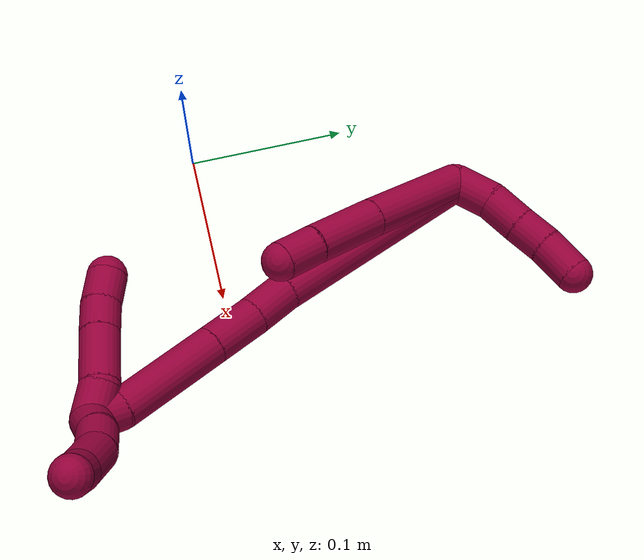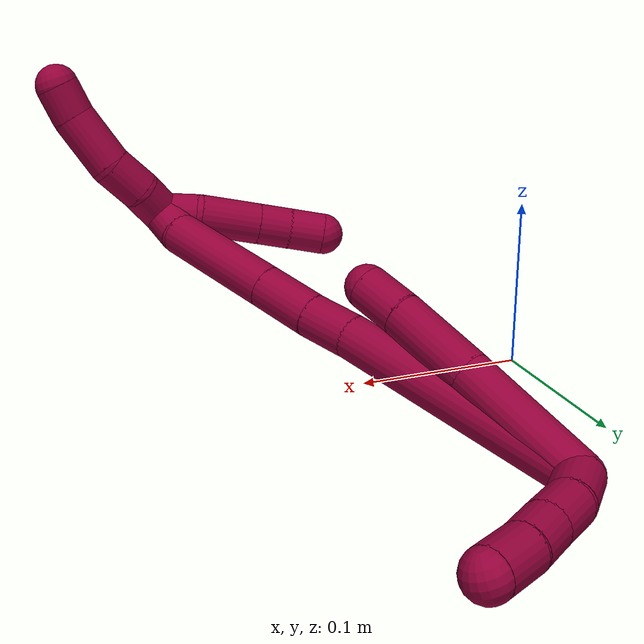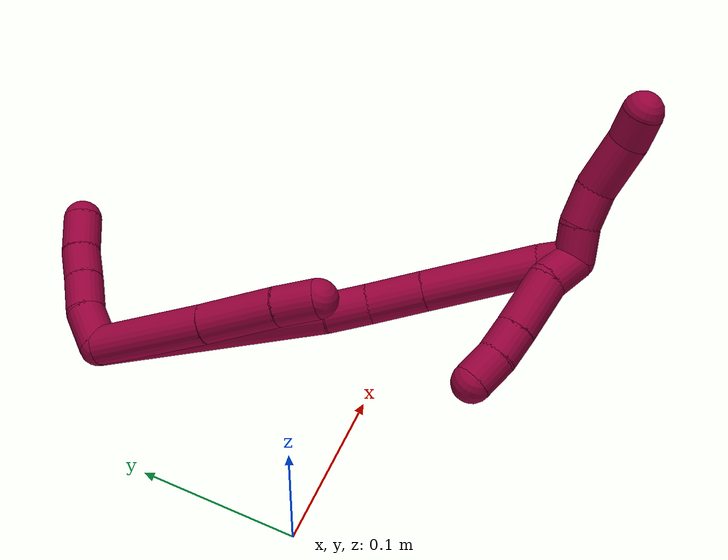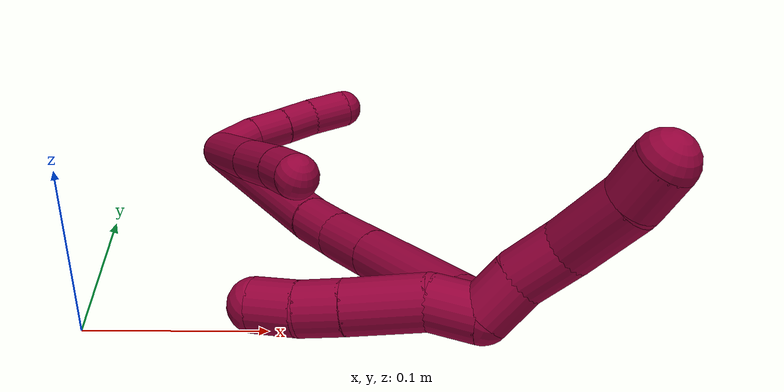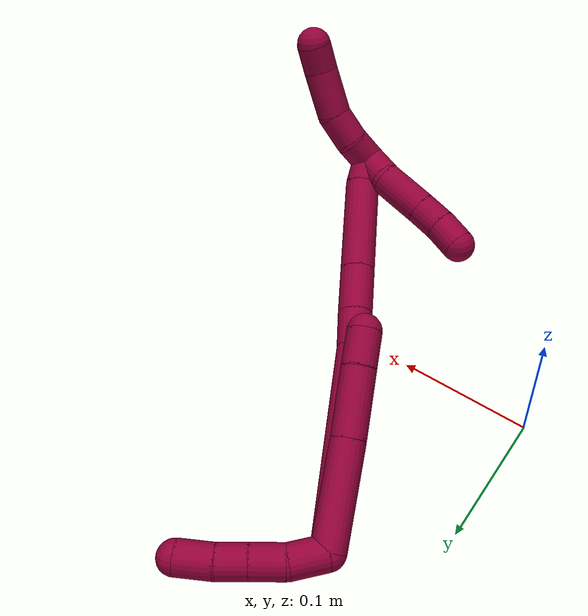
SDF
<sdf version="1.7">
 <world name="default">
  <model name="8">
   <static>0</static>
   <link name="8">
    <collision name="collision-cylinder-e_1_2_8">
     <pose>0.013992 -0.024576 -0.024188 2.34825 0.385478 0.872024</pose>
     <geometry><cylinder><radius>0.0125</radius><length>0.074427</length></cylinder></geometry>
     <surface>
      <friction><ode><mu>1.16</mu><mu2>1.16</mu2><slip1>0</slip1><slip2>0</slip2></ode></friction>
      <contact><ode><kp>1e+06</kp><kd>1</kd><max_vel>0</max_vel><min_depth>0.001</min_depth></ode></contact>
     </surface>
    </collision>
    <visual name="visual-cylinder-e_1_2_8">
     <pose>0.013992 -0.024576 -0.024188 2.34825 0.385478 0.872024</pose>
     <geometry><cylinder><radius>0.0125</radius><length>0.074427</length></cylinder></geometry>
     <material><ambient>0.584314 0 0.227451 1</ambient></material>
    </visual>
    <collision name="collision-cylinder-e_2_8_9">
     <pose>0.036525 -0.06562 -0.06439 2.3422 0.35598 0.805177</pose>
     <geometry><cylinder><radius>0.0125</radius><length>0.049013</length></cylinder></geometry>
     <surface>
      <friction><ode><mu>1.16</mu><mu2>1.16</mu2><slip1>0</slip1><slip2>0</slip2></ode></friction>
      <contact><ode><kp>1e+06</kp><kd>1</kd><max_vel>0</max_vel><min_depth>0.001</min_depth></ode></contact>
     </surface>
    </collision>
    <visual name="visual-cylinder-e_2_8_9">
     <pose>0.036525 -0.06562 -0.06439 2.3422 0.35598 0.805177</pose>
     <geometry><cylinder><radius>0.0125</radius><length>0.049013</length></cylinder></geometry>
     <material><ambient>0.584314 0 0.227451 1</ambient></material>
    </visual>
    <collision name="collision-cylinder-e_3_9_6">
     <pose>0.049809 -0.09154 -0.088437 2.27525 0.36521 0.759805</pose>
     <geometry><cylinder><radius>0.0125</radius><length>0.02656</length></cylinder></geometry>
     <surface>
      <friction><ode><mu>1.16</mu><mu2>1.16</mu2><slip1>0</slip1><slip2>0</slip2></ode></friction>
      <contact><ode><kp>1e+06</kp><kd>1</kd><max_vel>0</max_vel><min_depth>0.001</min_depth></ode></contact>
     </surface>
    </collision>
    <visual name="visual-cylinder-e_3_9_6">
     <pose>0.049809 -0.09154 -0.088437 2.27525 0.36521 0.759805</pose>
     <geometry><cylinder><radius>0.0125</radius><length>0.02656</length></cylinder></geometry>
     <material><ambient>0.584314 0 0.227451 1</ambient></material>
    </visual>
    <collision name="collision-cylinder-e_1_2_10">
     <pose>-0.013491 0.000589 -0.000497 -2.27098 -1.51374 2.22653</pose>
     <geometry><cylinder><radius>0.0125</radius><length>0.027027</length></cylinder></geometry>
     <surface>
      <friction><ode><mu>1.16</mu><mu2>1.16</mu2><slip1>0</slip1><slip2>0</slip2></ode></friction>
      <contact><ode><kp>1e+06</kp><kd>1</kd><max_vel>0</max_vel><min_depth>0.001</min_depth></ode></contact>
     </surface>
    </collision>
    <visual name="visual-cylinder-e_1_2_10">
     <pose>-0.013491 0.000589 -0.000497 -2.27098 -1.51374 2.22653</pose>
     <geometry><cylinder><radius>0.0125</radius><length>0.027027</length></cylinder></geometry>
     <material><ambient>0.584314 0 0.227451 1</ambient></material>
    </visual>
    <collision name="collision-cylinder-e_2_10_11">
     <pose>-0.039067 -0.001278 -0.002413 2.09493 -1.34016 -1.88281</pose>
     <geometry><cylinder><radius>0.0125</radius><length>0.024826</length></cylinder></geometry>
     <surface>
      <friction><ode><mu>1.16</mu><mu2>1.16</mu2><slip1>0</slip1><slip2>0</slip2></ode></friction>
      <contact><ode><kp>1e+06</kp><kd>1</kd><max_vel>0</max_vel><min_depth>0.001</min_depth></ode></contact>
     </surface>
    </collision>
    <visual name="visual-cylinder-e_2_10_11">
     <pose>-0.039067 -0.001278 -0.002413 2.09493 -1.34016 -1.88281</pose>
     <geometry><cylinder><radius>0.0125</radius><length>0.024826</length></cylinder></geometry>
     <material><ambient>0.584314 0 0.227451 1</ambient></material>
    </visual>
    <collision name="collision-cylinder-e_3_11_12">
     <pose>-0.061864 -0.005527 -0.005114 2.19123 -1.36801 -2.01571</pose>
     <geometry><cylinder><radius>0.0125</radius><length>0.021872</length></cylinder></geometry>
     <surface>
      <friction><ode><mu>1.16</mu><mu2>1.16</mu2><slip1>0</slip1><slip2>0</slip2></ode></friction>
      <contact><ode><kp>1e+06</kp><kd>1</kd><max_vel>0</max_vel><min_depth>0.001</min_depth></ode></contact>
     </surface>
    </collision>
    <visual name="visual-cylinder-e_3_11_12">
     <pose>-0.061864 -0.005527 -0.005114 2.19123 -1.36801 -2.01571</pose>
     <geometry><cylinder><radius>0.0125</radius><length>0.021872</length></cylinder></geometry>
     <material><ambient>0.584314 0 0.227451 1</ambient></material>
    </visual>
    <collision name="collision-cylinder-e_4_12_5">
     <pose>-0.085017 -0.010982 -0.008487 2.0899 -1.24389 -1.78048</pose>
     <geometry><cylinder><radius>0.0125</radius><length>0.026275</length></cylinder></geometry>
     <surface>
      <friction><ode><mu>1.16</mu><mu2>1.16</mu2><slip1>0</slip1><slip2>0</slip2></ode></friction>
      <contact><ode><kp>1e+06</kp><kd>1</kd><max_vel>0</max_vel><min_depth>0.001</min_depth></ode></contact>
     </surface>
    </collision>
    <visual name="visual-cylinder-e_4_12_5">
     <pose>-0.085017 -0.010982 -0.008487 2.0899 -1.24389 -1.78048</pose>
     <geometry><cylinder><radius>0.0125</radius><length>0.026275</length></cylinder></geometry>
     <material><ambient>0.584314 0 0.227451 1</ambient></material>
    </visual>
    <collision name="collision-cylinder-e_1_2_13">
     <pose>0.023912 -0.058022 -0.036462 2.13185 0.335734 0.595069</pose>
     <geometry><cylinder><radius>0.0125</radius><length>0.145159</length></cylinder></geometry>
     <surface>
      <friction><ode><mu>1.16</mu><mu2>1.16</mu2><slip1>0</slip1><slip2>0</slip2></ode></friction>
      <contact><ode><kp>1e+06</kp><kd>1</kd><max_vel>0</max_vel><min_depth>0.001</min_depth></ode></contact>
     </surface>
    </collision>
    <visual name="visual-cylinder-e_1_2_13">
     <pose>0.023912 -0.058022 -0.036462 2.13185 0.335734 0.595069</pose>
     <geometry><cylinder><radius>0.0125</radius><length>0.145159</length></cylinder></geometry>
     <material><ambient>0.584314 0 0.227451 1</ambient></material>
    </visual>
    <collision name="collision-cylinder-e_2_13_14">
     <pose>0.051225 -0.127579 -0.080028 2.12283 0.245905 0.435476</pose>
     <geometry><cylinder><radius>0.0125</radius><length>0.027935</length></cylinder></geometry>
     <surface>
      <friction><ode><mu>1.16</mu><mu2>1.16</mu2><slip1>0</slip1><slip2>0</slip2></ode></friction>
      <contact><ode><kp>1e+06</kp><kd>1</kd><max_vel>0</max_vel><min_depth>0.001</min_depth></ode></contact>
     </surface>
    </collision>
    <visual name="visual-cylinder-e_2_13_14">
     <pose>0.051225 -0.127579 -0.080028 2.12283 0.245905 0.435476</pose>
     <geometry><cylinder><radius>0.0125</radius><length>0.027935</length></cylinder></geometry>
     <material><ambient>0.584314 0 0.227451 1</ambient></material>
    </visual>
    <collision name="collision-cylinder-e_3_14_15">
     <pose>0.05922 -0.152706 -0.09678 2.18807 0.269 0.512461</pose>
     <geometry><cylinder><radius>0.0125</radius><length>0.034581</length></cylinder></geometry>
     <surface>
      <friction><ode><mu>1.16</mu><mu2>1.16</mu2><slip1>0</slip1><slip2>0</slip2></ode></friction>
      <contact><ode><kp>1e+06</kp><kd>1</kd><max_vel>0</max_vel><min_depth>0.001</min_depth></ode></contact>
     </surface>
    </collision>
    <visual name="visual-cylinder-e_3_14_15">
     <pose>0.05922 -0.152706 -0.09678 2.18807 0.269 0.512461</pose>
     <geometry><cylinder><radius>0.0125</radius><length>0.034581</length></cylinder></geometry>
     <material><ambient>0.584314 0 0.227451 1</ambient></material>
    </visual>
    <collision name="collision-cylinder-e_4_15_16">
     <pose>0.07341 -0.194564 -0.126286 2.18323 0.270925 0.513089</pose>
     <geometry><cylinder><radius>0.0125</radius><length>0.071703</length></cylinder></geometry>
     <surface>
      <friction><ode><mu>1.16</mu><mu2>1.16</mu2><slip1>0</slip1><slip2>0</slip2></ode></friction>
      <contact><ode><kp>1e+06</kp><kd>1</kd><max_vel>0</max_vel><min_depth>0.001</min_depth></ode></contact>
     </surface>
    </collision>
    <visual name="visual-cylinder-e_4_15_16">
     <pose>0.07341 -0.194564 -0.126286 2.18323 0.270925 0.513089</pose>
     <geometry><cylinder><radius>0.0125</radius><length>0.071703</length></cylinder></geometry>
     <material><ambient>0.584314 0 0.227451 1</ambient></material>
    </visual>
    <collision name="collision-cylinder-e_5_16_1">
     <pose>0.08759 -0.229371 -0.152663 2.35449 0.460845 1.02855</pose>
     <geometry><cylinder><radius>0.0125</radius><length>0.020622</length></cylinder></geometry>
     <surface>
      <friction><ode><mu>1.16</mu><mu2>1.16</mu2><slip1>0</slip1><slip2>0</slip2></ode></friction>
      <contact><ode><kp>1e+06</kp><kd>1</kd><max_vel>0</max_vel><min_depth>0.001</min_depth></ode></contact>
     </surface>
    </collision>
    <visual name="visual-cylinder-e_5_16_1">
     <pose>0.08759 -0.229371 -0.152663 2.35449 0.460845 1.02855</pose>
     <geometry><cylinder><radius>0.0125</radius><length>0.020622</length></cylinder></geometry>
     <material><ambient>0.584314 0 0.227451 1</ambient></material>
    </visual>
    <collision name="collision-cylinder-e_1_1_17">
     <pose>0.096127 -0.226156 -0.155236 -1.18643 0.359189 -0.243598</pose>
     <geometry><cylinder><radius>0.0125</radius><length>0.022484</length></cylinder></geometry>
     <surface>
      <friction><ode><mu>1.16</mu><mu2>1.16</mu2><slip1>0</slip1><slip2>0</slip2></ode></friction>
      <contact><ode><kp>1e+06</kp><kd>1</kd><max_vel>0</max_vel><min_depth>0.001</min_depth></ode></contact>
     </surface>
    </collision>
    <visual name="visual-cylinder-e_1_1_17">
     <pose>0.096127 -0.226156 -0.155236 -1.18643 0.359189 -0.243598</pose>
     <geometry><cylinder><radius>0.0125</radius><length>0.022484</length></cylinder></geometry>
     <material><ambient>0.584314 0 0.227451 1</ambient></material>
    </visual>
    <collision name="collision-cylinder-e_2_17_18">
     <pose>0.110227 -0.204187 -0.142543 -0.949279 0.59414 -0.312031</pose>
     <geometry><cylinder><radius>0.0125</radius><length>0.036258</length></cylinder></geometry>
     <surface>
      <friction><ode><mu>1.16</mu><mu2>1.16</mu2><slip1>0</slip1><slip2>0</slip2></ode></friction>
      <contact><ode><kp>1e+06</kp><kd>1</kd><max_vel>0</max_vel><min_depth>0.001</min_depth></ode></contact>
     </surface>
    </collision>
    <visual name="visual-cylinder-e_2_17_18">
     <pose>0.110227 -0.204187 -0.142543 -0.949279 0.59414 -0.312031</pose>
     <geometry><cylinder><radius>0.0125</radius><length>0.036258</length></cylinder></geometry>
     <material><ambient>0.584314 0 0.227451 1</ambient></material>
    </visual>
    <collision name="collision-cylinder-e_3_18_19">
     <pose>0.125782 -0.184948 -0.128903 -0.962503 0.563211 -0.299872</pose>
     <geometry><cylinder><radius>0.0125</radius><length>0.020251</length></cylinder></geometry>
     <surface>
      <friction><ode><mu>1.16</mu><mu2>1.16</mu2><slip1>0</slip1><slip2>0</slip2></ode></friction>
      <contact><ode><kp>1e+06</kp><kd>1</kd><max_vel>0</max_vel><min_depth>0.001</min_depth></ode></contact>
     </surface>
    </collision>
    <visual name="visual-cylinder-e_3_18_19">
     <pose>0.125782 -0.184948 -0.128903 -0.962503 0.563211 -0.299872</pose>
     <geometry><cylinder><radius>0.0125</radius><length>0.020251</length></cylinder></geometry>
     <material><ambient>0.584314 0 0.227451 1</ambient></material>
    </visual>
    <collision name="collision-cylinder-e_4_19_4">
     <pose>0.135465 -0.169708 -0.119056 -1.02804 0.419432 -0.23922</pose>
     <geometry><cylinder><radius>0.0125</radius><length>0.021008</length></cylinder></geometry>
     <surface>
      <friction><ode><mu>1.16</mu><mu2>1.16</mu2><slip1>0</slip1><slip2>0</slip2></ode></friction>
      <contact><ode><kp>1e+06</kp><kd>1</kd><max_vel>0</max_vel><min_depth>0.001</min_depth></ode></contact>
     </surface>
    </collision>
    <visual name="visual-cylinder-e_4_19_4">
     <pose>0.135465 -0.169708 -0.119056 -1.02804 0.419432 -0.23922</pose>
     <geometry><cylinder><radius>0.0125</radius><length>0.021008</length></cylinder></geometry>
     <material><ambient>0.584314 0 0.227451 1</ambient></material>
    </visual>
    <collision name="collision-cylinder-e_1_1_20">
     <pose>0.086383 -0.236636 -0.168294 3.06237 -0.564869 -2.87014</pose>
     <geometry><cylinder><radius>0.0125</radius><length>0.021642</length></cylinder></geometry>
     <surface>
      <friction><ode><mu>1.16</mu><mu2>1.16</mu2><slip1>0</slip1><slip2>0</slip2></ode></friction>
      <contact><ode><kp>1e+06</kp><kd>1</kd><max_vel>0</max_vel><min_depth>0.001</min_depth></ode></contact>
     </surface>
    </collision>
    <visual name="visual-cylinder-e_1_1_20">
     <pose>0.086383 -0.236636 -0.168294 3.06237 -0.564869 -2.87014</pose>
     <geometry><cylinder><radius>0.0125</radius><length>0.021642</length></cylinder></geometry>
     <material><ambient>0.584314 0 0.227451 1</ambient></material>
    </visual>
    <collision name="collision-cylinder-e_2_20_21">
     <pose>0.075643 -0.240754 -0.187559 2.81898 -0.432875 -1.86742</pose>
     <geometry><cylinder><radius>0.0125</radius><length>0.023587</length></cylinder></geometry>
     <surface>
      <friction><ode><mu>1.16</mu><mu2>1.16</mu2><slip1>0</slip1><slip2>0</slip2></ode></friction>
      <contact><ode><kp>1e+06</kp><kd>1</kd><max_vel>0</max_vel><min_depth>0.001</min_depth></ode></contact>
     </surface>
    </collision>
    <visual name="visual-cylinder-e_2_20_21">
     <pose>0.075643 -0.240754 -0.187559 2.81898 -0.432875 -1.86742</pose>
     <geometry><cylinder><radius>0.0125</radius><length>0.023587</length></cylinder></geometry>
     <material><ambient>0.584314 0 0.227451 1</ambient></material>
    </visual>
    <collision name="collision-cylinder-e_3_21_22">
     <pose>0.06825 -0.248595 -0.214242 2.87879 -0.141936 -0.986982</pose>
     <geometry><cylinder><radius>0.0125</radius><length>0.034582</length></cylinder></geometry>
     <surface>
      <friction><ode><mu>1.16</mu><mu2>1.16</mu2><slip1>0</slip1><slip2>0</slip2></ode></friction>
      <contact><ode><kp>1e+06</kp><kd>1</kd><max_vel>0</max_vel><min_depth>0.001</min_depth></ode></contact>
     </surface>
    </collision>
    <visual name="visual-cylinder-e_3_21_22">
     <pose>0.06825 -0.248595 -0.214242 2.87879 -0.141936 -0.986982</pose>
     <geometry><cylinder><radius>0.0125</radius><length>0.034582</length></cylinder></geometry>
     <material><ambient>0.584314 0 0.227451 1</ambient></material>
    </visual>
    <collision name="collision-cylinder-e_4_22_3">
     <pose>0.064474 -0.253618 -0.240761 3.08397 -0.132149 -2.32006</pose>
     <geometry><cylinder><radius>0.0125</radius><length>0.020189</length></cylinder></geometry>
     <surface>
      <friction><ode><mu>1.16</mu><mu2>1.16</mu2><slip1>0</slip1><slip2>0</slip2></ode></friction>
      <contact><ode><kp>1e+06</kp><kd>1</kd><max_vel>0</max_vel><min_depth>0.001</min_depth></ode></contact>
     </surface>
    </collision>
    <visual name="visual-cylinder-e_4_22_3">
     <pose>0.064474 -0.253618 -0.240761 3.08397 -0.132149 -2.32006</pose>
     <geometry><cylinder><radius>0.0125</radius><length>0.020189</length></cylinder></geometry>
     <material><ambient>0.584314 0 0.227451 1</ambient></material>
    </visual>
    <collision name="collision-sphere-3">
     <pose>0.063144 -0.254194 -0.250751 0 -0 0</pose>
     <geometry><sphere><radius>0.0125</radius></sphere></geometry>
     <surface>
      <friction><ode><mu>1.16</mu><mu2>1.16</mu2><slip1>0</slip1><slip2>0</slip2></ode></friction>
      <contact><ode><kp>1e+06</kp><kd>1</kd><max_vel>0</max_vel><min_depth>0.001</min_depth></ode></contact>
     </surface>
    </collision>
    <visual name="visual-sphere-3">
     <pose>0.063144 -0.254194 -0.250751 0 -0 0</pose>
     <geometry><sphere><radius>0.0125</radius></sphere></geometry>
     <material><ambient>0.584314 0 0.227451 1</ambient></material>
    </visual>
    <collision name="collision-sphere-22">
     <pose>0.065804 -0.253042 -0.230771 0 -0 0</pose>
     <geometry><sphere><radius>0.0125</radius></sphere></geometry>
     <surface>
      <friction><ode><mu>1.16</mu><mu2>1.16</mu2><slip1>0</slip1><slip2>0</slip2></ode></friction>
      <contact><ode><kp>1e+06</kp><kd>1</kd><max_vel>0</max_vel><min_depth>0.001</min_depth></ode></contact>
     </surface>
    </collision>
    <visual name="visual-sphere-22">
     <pose>0.065804 -0.253042 -0.230771 0 -0 0</pose>
     <geometry><sphere><radius>0.0125</radius></sphere></geometry>
     <material><ambient>0.584314 0 0.227451 1</ambient></material>
    </visual>
    <collision name="collision-sphere-21">
     <pose>0.070696 -0.244148 -0.197712 0 -0 0</pose>
     <geometry><sphere><radius>0.0125</radius></sphere></geometry>
     <surface>
      <friction><ode><mu>1.16</mu><mu2>1.16</mu2><slip1>0</slip1><slip2>0</slip2></ode></friction>
      <contact><ode><kp>1e+06</kp><kd>1</kd><max_vel>0</max_vel><min_depth>0.001</min_depth></ode></contact>
     </surface>
    </collision>
    <visual name="visual-sphere-21">
     <pose>0.070696 -0.244148 -0.197712 0 -0 0</pose>
     <geometry><sphere><radius>0.0125</radius></sphere></geometry>
     <material><ambient>0.584314 0 0.227451 1</ambient></material>
    </visual>
    <collision name="collision-sphere-20">
     <pose>0.08059 -0.23736 -0.177405 0 -0 0</pose>
     <geometry><sphere><radius>0.0125</radius></sphere></geometry>
     <surface>
      <friction><ode><mu>1.16</mu><mu2>1.16</mu2><slip1>0</slip1><slip2>0</slip2></ode></friction>
      <contact><ode><kp>1e+06</kp><kd>1</kd><max_vel>0</max_vel><min_depth>0.001</min_depth></ode></contact>
     </surface>
    </collision>
    <visual name="visual-sphere-20">
     <pose>0.08059 -0.23736 -0.177405 0 -0 0</pose>
     <geometry><sphere><radius>0.0125</radius></sphere></geometry>
     <material><ambient>0.584314 0 0.227451 1</ambient></material>
    </visual>
    <collision name="collision-sphere-4">
     <pose>0.139743 -0.161493 -0.114101 0 -0 0</pose>
     <geometry><sphere><radius>0.0125</radius></sphere></geometry>
     <surface>
      <friction><ode><mu>1.16</mu><mu2>1.16</mu2><slip1>0</slip1><slip2>0</slip2></ode></friction>
      <contact><ode><kp>1e+06</kp><kd>1</kd><max_vel>0</max_vel><min_depth>0.001</min_depth></ode></contact>
     </surface>
    </collision>
    <visual name="visual-sphere-4">
     <pose>0.139743 -0.161493 -0.114101 0 -0 0</pose>
     <geometry><sphere><radius>0.0125</radius></sphere></geometry>
     <material><ambient>0.584314 0 0.227451 1</ambient></material>
    </visual>
    <collision name="collision-sphere-11">
     <pose>-0.051152 -0.003735 -0.003833 0 -0 0</pose>
     <geometry><sphere><radius>0.0125</radius></sphere></geometry>
     <surface>
      <friction><ode><mu>1.16</mu><mu2>1.16</mu2><slip1>0</slip1><slip2>0</slip2></ode></friction>
      <contact><ode><kp>1e+06</kp><kd>1</kd><max_vel>0</max_vel><min_depth>0.001</min_depth></ode></contact>
     </surface>
    </collision>
    <visual name="visual-sphere-11">
     <pose>-0.051152 -0.003735 -0.003833 0 -0 0</pose>
     <geometry><sphere><radius>0.0125</radius></sphere></geometry>
     <material><ambient>0.584314 0 0.227451 1</ambient></material>
    </visual>
    <collision name="collision-sphere-10">
     <pose>-0.026983 0.001179 -0.000993 0 -0 0</pose>
     <geometry><sphere><radius>0.0125</radius></sphere></geometry>
     <surface>
      <friction><ode><mu>1.16</mu><mu2>1.16</mu2><slip1>0</slip1><slip2>0</slip2></ode></friction>
      <contact><ode><kp>1e+06</kp><kd>1</kd><max_vel>0</max_vel><min_depth>0.001</min_depth></ode></contact>
     </surface>
    </collision>
    <visual name="visual-sphere-10">
     <pose>-0.026983 0.001179 -0.000993 0 -0 0</pose>
     <geometry><sphere><radius>0.0125</radius></sphere></geometry>
     <material><ambient>0.584314 0 0.227451 1</ambient></material>
    </visual>
    <collision name="collision-sphere-6">
     <pose>0.054552 -0.100991 -0.09647 0 -0 0</pose>
     <geometry><sphere><radius>0.0125</radius></sphere></geometry>
     <surface>
      <friction><ode><mu>1.16</mu><mu2>1.16</mu2><slip1>0</slip1><slip2>0</slip2></ode></friction>
      <contact><ode><kp>1e+06</kp><kd>1</kd><max_vel>0</max_vel><min_depth>0.001</min_depth></ode></contact>
     </surface>
    </collision>
    <visual name="visual-sphere-6">
     <pose>0.054552 -0.100991 -0.09647 0 -0 0</pose>
     <geometry><sphere><radius>0.0125</radius></sphere></geometry>
     <material><ambient>0.584314 0 0.227451 1</ambient></material>
    </visual>
    <collision name="collision-sphere-9">
     <pose>0.045066 -0.082088 -0.080404 0 -0 0</pose>
     <geometry><sphere><radius>0.0125</radius></sphere></geometry>
     <surface>
      <friction><ode><mu>1.16</mu><mu2>1.16</mu2><slip1>0</slip1><slip2>0</slip2></ode></friction>
      <contact><ode><kp>1e+06</kp><kd>1</kd><max_vel>0</max_vel><min_depth>0.001</min_depth></ode></contact>
     </surface>
    </collision>
    <visual name="visual-sphere-9">
     <pose>0.045066 -0.082088 -0.080404 0 -0 0</pose>
     <geometry><sphere><radius>0.0125</radius></sphere></geometry>
     <material><ambient>0.584314 0 0.227451 1</ambient></material>
    </visual>
    <collision name="collision-sphere-2">
     <geometry><sphere><radius>0.0125</radius></sphere></geometry>
     <surface>
      <friction><ode><mu>1.16</mu><mu2>1.16</mu2><slip1>0</slip1><slip2>0</slip2></ode></friction>
      <contact><ode><kp>1e+06</kp><kd>1</kd><max_vel>0</max_vel><min_depth>0.001</min_depth></ode></contact>
     </surface>
    </collision>
    <visual name="visual-sphere-2">
     <geometry><sphere><radius>0.0125</radius></sphere></geometry>
     <material><ambient>0.584314 0 0.227451 1</ambient></material>
    </visual>
    <collision name="collision-sphere-19">
     <pose>0.131188 -0.177923 -0.124011 0 -0 0</pose>
     <geometry><sphere><radius>0.0125</radius></sphere></geometry>
     <surface>
      <friction><ode><mu>1.16</mu><mu2>1.16</mu2><slip1>0</slip1><slip2>0</slip2></ode></friction>
      <contact><ode><kp>1e+06</kp><kd>1</kd><max_vel>0</max_vel><min_depth>0.001</min_depth></ode></contact>
     </surface>
    </collision>
    <visual name="visual-sphere-19">
     <pose>0.131188 -0.177923 -0.124011 0 -0 0</pose>
     <geometry><sphere><radius>0.0125</radius></sphere></geometry>
     <material><ambient>0.584314 0 0.227451 1</ambient></material>
    </visual>
    <collision name="collision-sphere-8">
     <pose>0.027985 -0.049152 -0.048377 0 -0 0</pose>
     <geometry><sphere><radius>0.0125</radius></sphere></geometry>
     <surface>
      <friction><ode><mu>1.16</mu><mu2>1.16</mu2><slip1>0</slip1><slip2>0</slip2></ode></friction>
      <contact><ode><kp>1e+06</kp><kd>1</kd><max_vel>0</max_vel><min_depth>0.001</min_depth></ode></contact>
     </surface>
    </collision>
    <visual name="visual-sphere-8">
     <pose>0.027985 -0.049152 -0.048377 0 -0 0</pose>
     <geometry><sphere><radius>0.0125</radius></sphere></geometry>
     <material><ambient>0.584314 0 0.227451 1</ambient></material>
    </visual>
    <collision name="collision-sphere-12">
     <pose>-0.072576 -0.007319 -0.006394 0 -0 0</pose>
     <geometry><sphere><radius>0.0125</radius></sphere></geometry>
     <surface>
      <friction><ode><mu>1.16</mu><mu2>1.16</mu2><slip1>0</slip1><slip2>0</slip2></ode></friction>
      <contact><ode><kp>1e+06</kp><kd>1</kd><max_vel>0</max_vel><min_depth>0.001</min_depth></ode></contact>
     </surface>
    </collision>
    <visual name="visual-sphere-12">
     <pose>-0.072576 -0.007319 -0.006394 0 -0 0</pose>
     <geometry><sphere><radius>0.0125</radius></sphere></geometry>
     <material><ambient>0.584314 0 0.227451 1</ambient></material>
    </visual>
    <collision name="collision-sphere-5">
     <pose>-0.097459 -0.014645 -0.01058 0 -0 0</pose>
     <geometry><sphere><radius>0.0125</radius></sphere></geometry>
     <surface>
      <friction><ode><mu>1.16</mu><mu2>1.16</mu2><slip1>0</slip1><slip2>0</slip2></ode></friction>
      <contact><ode><kp>1e+06</kp><kd>1</kd><max_vel>0</max_vel><min_depth>0.001</min_depth></ode></contact>
     </surface>
    </collision>
    <visual name="visual-sphere-5">
     <pose>-0.097459 -0.014645 -0.01058 0 -0 0</pose>
     <geometry><sphere><radius>0.0125</radius></sphere></geometry>
     <material><ambient>0.584314 0 0.227451 1</ambient></material>
    </visual>
    <collision name="collision-sphere-13">
     <pose>0.047824 -0.116043 -0.072923 0 -0 0</pose>
     <geometry><sphere><radius>0.0125</radius></sphere></geometry>
     <surface>
      <friction><ode><mu>1.16</mu><mu2>1.16</mu2><slip1>0</slip1><slip2>0</slip2></ode></friction>
      <contact><ode><kp>1e+06</kp><kd>1</kd><max_vel>0</max_vel><min_depth>0.001</min_depth></ode></contact>
     </surface>
    </collision>
    <visual name="visual-sphere-13">
     <pose>0.047824 -0.116043 -0.072923 0 -0 0</pose>
     <geometry><sphere><radius>0.0125</radius></sphere></geometry>
     <material><ambient>0.584314 0 0.227451 1</ambient></material>
    </visual>
    <collision name="collision-sphere-14">
     <pose>0.054625 -0.139114 -0.087132 0 -0 0</pose>
     <geometry><sphere><radius>0.0125</radius></sphere></geometry>
     <surface>
      <friction><ode><mu>1.16</mu><mu2>1.16</mu2><slip1>0</slip1><slip2>0</slip2></ode></friction>
      <contact><ode><kp>1e+06</kp><kd>1</kd><max_vel>0</max_vel><min_depth>0.001</min_depth></ode></contact>
     </surface>
    </collision>
    <visual name="visual-sphere-14">
     <pose>0.054625 -0.139114 -0.087132 0 -0 0</pose>
     <geometry><sphere><radius>0.0125</radius></sphere></geometry>
     <material><ambient>0.584314 0 0.227451 1</ambient></material>
    </visual>
    <collision name="collision-sphere-15">
     <pose>0.063815 -0.166299 -0.106428 0 -0 0</pose>
     <geometry><sphere><radius>0.0125</radius></sphere></geometry>
     <surface>
      <friction><ode><mu>1.16</mu><mu2>1.16</mu2><slip1>0</slip1><slip2>0</slip2></ode></friction>
      <contact><ode><kp>1e+06</kp><kd>1</kd><max_vel>0</max_vel><min_depth>0.001</min_depth></ode></contact>
     </surface>
    </collision>
    <visual name="visual-sphere-15">
     <pose>0.063815 -0.166299 -0.106428 0 -0 0</pose>
     <geometry><sphere><radius>0.0125</radius></sphere></geometry>
     <material><ambient>0.584314 0 0.227451 1</ambient></material>
    </visual>
    <collision name="collision-sphere-16">
     <pose>0.083005 -0.22283 -0.146144 0 -0 0</pose>
     <geometry><sphere><radius>0.0125</radius></sphere></geometry>
     <surface>
      <friction><ode><mu>1.16</mu><mu2>1.16</mu2><slip1>0</slip1><slip2>0</slip2></ode></friction>
      <contact><ode><kp>1e+06</kp><kd>1</kd><max_vel>0</max_vel><min_depth>0.001</min_depth></ode></contact>
     </surface>
    </collision>
    <visual name="visual-sphere-16">
     <pose>0.083005 -0.22283 -0.146144 0 -0 0</pose>
     <geometry><sphere><radius>0.0125</radius></sphere></geometry>
     <material><ambient>0.584314 0 0.227451 1</ambient></material>
    </visual>
    <collision name="collision-sphere-1">
     <pose>0.092175 -0.235913 -0.159182 0 -0 0</pose>
     <geometry><sphere><radius>0.0125</radius></sphere></geometry>
     <surface>
      <friction><ode><mu>1.16</mu><mu2>1.16</mu2><slip1>0</slip1><slip2>0</slip2></ode></friction>
      <contact><ode><kp>1e+06</kp><kd>1</kd><max_vel>0</max_vel><min_depth>0.001</min_depth></ode></contact>
     </surface>
    </collision>
    <visual name="visual-sphere-1">
     <pose>0.092175 -0.235913 -0.159182 0 -0 0</pose>
     <geometry><sphere><radius>0.0125</radius></sphere></geometry>
     <material><ambient>0.584314 0 0.227451 1</ambient></material>
    </visual>
    <collision name="collision-sphere-18">
     <pose>0.120376 -0.191974 -0.133796 0 -0 0</pose>
     <geometry><sphere><radius>0.0125</radius></sphere></geometry>
     <surface>
      <friction><ode><mu>1.16</mu><mu2>1.16</mu2><slip1>0</slip1><slip2>0</slip2></ode></friction>
      <contact><ode><kp>1e+06</kp><kd>1</kd><max_vel>0</max_vel><min_depth>0.001</min_depth></ode></contact>
     </surface>
    </collision>
    <visual name="visual-sphere-18">
     <pose>0.120376 -0.191974 -0.133796 0 -0 0</pose>
     <geometry><sphere><radius>0.0125</radius></sphere></geometry>
     <material><ambient>0.584314 0 0.227451 1</ambient></material>
    </visual>
    <collision name="collision-sphere-17">
     <pose>0.100079 -0.2164 -0.15129 0 -0 0</pose>
     <geometry><sphere><radius>0.0125</radius></sphere></geometry>
     <surface>
      <friction><ode><mu>1.16</mu><mu2>1.16</mu2><slip1>0</slip1><slip2>0</slip2></ode></friction>
      <contact><ode><kp>1e+06</kp><kd>1</kd><max_vel>0</max_vel><min_depth>0.001</min_depth></ode></contact>
     </surface>
    </collision>
    <visual name="visual-sphere-17">
     <pose>0.100079 -0.2164 -0.15129 0 -0 0</pose>
     <geometry><sphere><radius>0.0125</radius></sphere></geometry>
     <material><ambient>0.584314 0 0.227451 1</ambient></material>
    </visual>
    <inertial>
     <pose>0.042826 -0.117554 -0.08653 0 -0 0</pose>
     <mass>0.75</mass>
     <inertia>
      <ixx>0.000467</ixx>
      <ixy>0</ixy>
      <ixz>0</ixz>
      <iyy>7.3e-05</iyy>
      <iyz>0</iyz>
      <izz>0.000138</izz>
     </inertia>
    </inertial>
   </link>
   <pose>0.060249 0.163847 0.015148 2.80056 -0.036857 -2.34416</pose>
  </model>
 </world>
</sdf>
